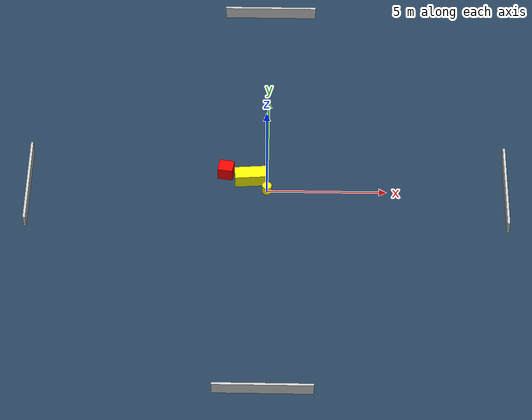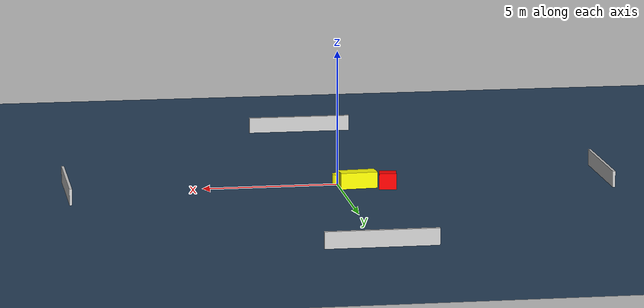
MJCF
<?xml version="1.0" ?>
<mujoco model="generated_environment">
  <option timestep="0.01" integrator="RK4" cone="elliptic"/>
  <default>
    <geom density="1"/>
  </default>
  <asset>
    <texture builtin="gradient" height="3072" name="skybox" rgb1="0.3 0.5 0.7" rgb2="0 0 0" type="skybox" width="512"/>
    <texture builtin="checker" height="300" name="groundplane" rgb1="0.2 0.3 0.4" rgb2="0.1 0.2 0.3" type="2d" width="300"/>
    <material name="groundplane" reflectance="0.2" texrepeat="5 5" texture="groundplane"/>
  </asset>
  <worldbody>
    <light dir="0 0 -1" directional="true" pos="0 0 1.5"/>
    <geom condim="3" friction="0.5 0.005 0.001" material="groundplane" name="floor" pos="0 0 0" size="0 0 0.05" type="plane"/>
    <body name="walls">
      <geom name="wall_1" condim="4" pos="-10.0 0.0 0.3" rgba="0.800000011920929 0.800000011920929 0.800000011920929 1.0" size="0.05 2.0 0.3" type="box"/>
      <geom name="wall_2" condim="4" pos="10.0 0.0 0.3" rgba="0.800000011920929 0.800000011920929 0.800000011920929 1.0" size="0.05 2.0 0.3" type="box"/>
      <geom name="wall_3" condim="4" pos="0.0 -10.0 0.3" rgba="0.800000011920929 0.800000011920929 0.800000011920929 1.0" size="2.0 0.05 0.3" type="box"/>
      <geom name="wall_4" condim="4" pos="0.0 10.0 0.3" rgba="0.800000011920929 0.800000011920929 0.800000011920929 1.0" size="2.0 0.05 0.3" type="box"/>
    </body>
    <body name="robot">
      <joint name="joint_x" type="slide" pos="0 0 0" axis="1 0 0"/>
      <joint name="joint_y" type="slide" pos="0 0 0" axis="0 1 0"/>
      <geom name="robot" type="cylinder" pos="0.0 0.0 0.2" size="0.2 0.2 0.0" mass="5.0" friction="1.0 0.005 0.0001" condim="4" rgba="1.0 1.0 0.0 1.0"/>
    </body>
    <body name="obstacle_1_movable">
      <geom name="obstacle_1_movable" condim="4" pos="-0.6712399829100257 0.5561921506978259 0.3" euler="0 0 274.2895662757113" friction="0.0 0.005 0.001" rgba="1.0 1.0 0.0 1.0" size="0.2939733411563885 0.6874175911398346 0.3" type="box" mass="0.1"/>
      <joint type="free"/>
    </body>
    <body name="obstacle_2_static">
      <geom name="obstacle_2_static" condim="4" pos="-1.7378764834090539 0.8849157664690471 0.3" euler="0 0 261.3923330081316" friction="0.0 0.005 0.001" rgba="1.0 0.0 0.0 1.0" size="0.2780505615879152 0.31283342774134876 0.3" type="box"/>
    </body>
  </worldbody>
  <actuator>
    <motor name="actuator_x" joint="joint_x" gear="1" ctrlrange="-1 1"/>
    <motor name="actuator_y" joint="joint_y" gear="1" ctrlrange="-1 1"/>
  </actuator>
</mujoco>
